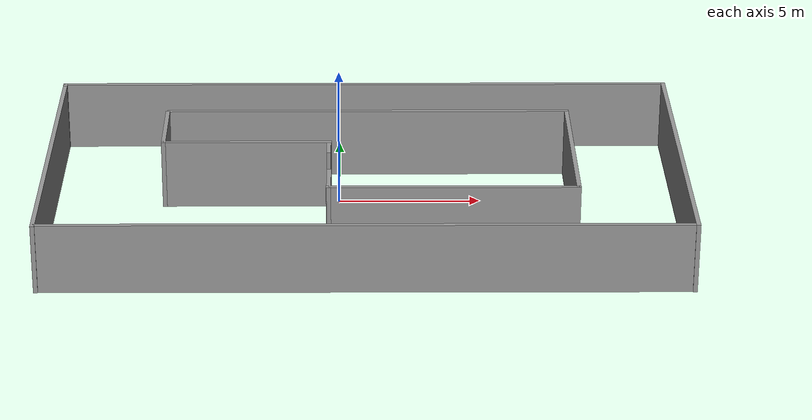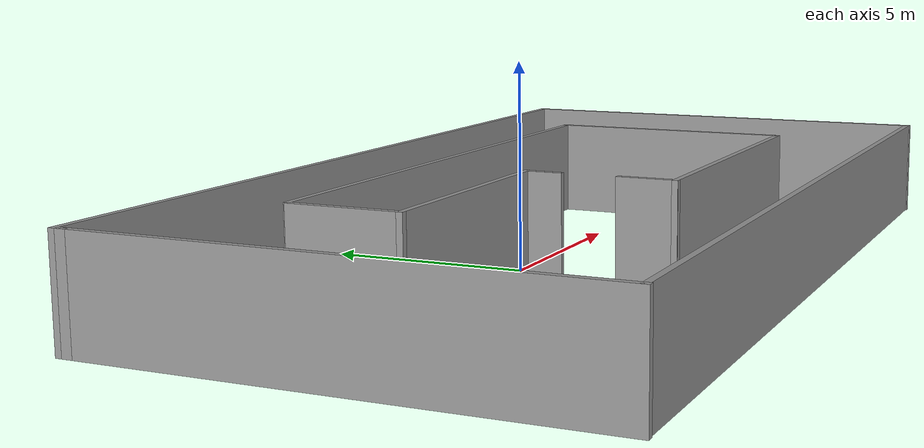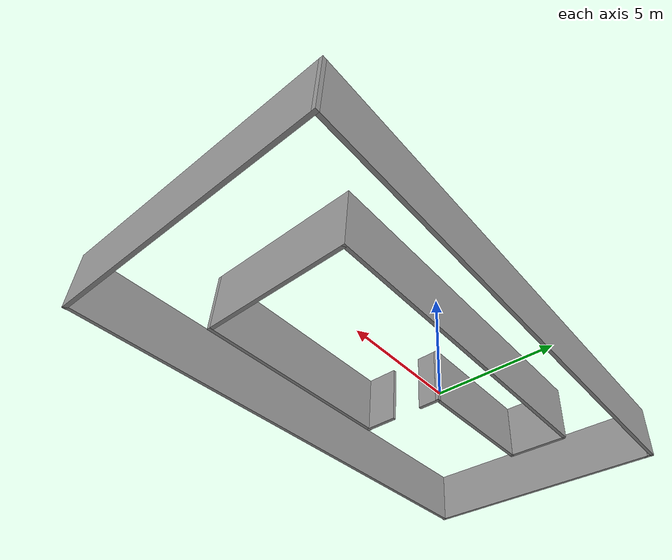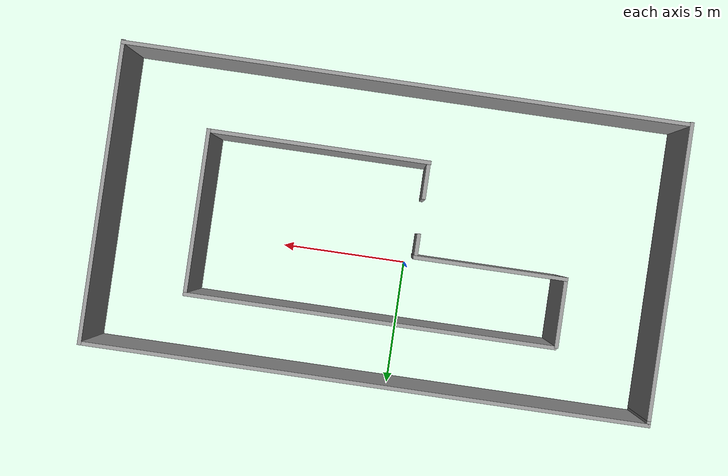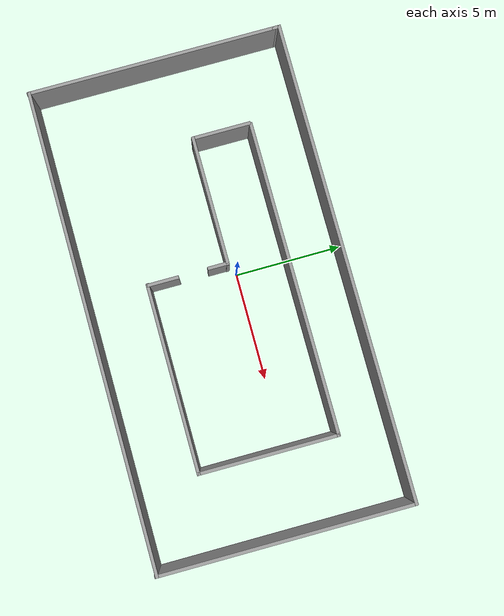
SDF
<?xml version='1.0'?>
<sdf version='1.6'>
  <model name='wallroom2'>
    <pose frame=''>0.910077 -1.07602 0 0 -0 0</pose>
    <link name='Wall_1'>
      <collision name='Wall_1_Collision'>
        <geometry>
          <box>
            <size>11.612 0.15 2.5</size>
          </box>
        </geometry>
        <pose frame=''>0 0 1.25 0 -0 0</pose>
      </collision>
      <visual name='Wall_1_Visual'>
        <pose frame=''>0 0 1.25 0 -0 0</pose>
        <geometry>
          <box>
            <size>11.612 0.15 2.5</size>
          </box>
        </geometry>
        <material>
          <script>
            <uri>file://media/materials/scripts/gazebo.material</uri>
            <name>Gazebo/Grey</name>
          </script>
          <ambient>1 1 1 1</ambient>
        </material>
      </visual>
      <pose frame=''>-11.05 -0.125 0 0 0 -1.5708</pose>
    </link>
    <link name='Wall_10'>
      <collision name='Wall_10_Collision'>
        <geometry>
          <box>
            <size>1.5 0.15 2.5</size>
          </box>
        </geometry>
        <pose frame=''>0 0 1.25 0 -0 0</pose>
      </collision>
      <visual name='Wall_10_Visual'>
        <pose frame=''>0 0 1.25 0 -0 0</pose>
        <geometry>
          <box>
            <size>1.5 0.15 2.5</size>
          </box>
        </geometry>
        <material>
          <script>
            <uri>file://media/materials/scripts/gazebo.material</uri>
            <name>Gazebo/Grey</name>
          </script>
          <ambient>1 1 1 1</ambient>
        </material>
      </visual>
      <pose frame=''>-1.24969 -2.26286 0 0 -0 1.5708</pose>
    </link>
    <link name='Wall_12'>
      <collision name='Wall_12_Collision'>
        <geometry>
          <box>
            <size>1 0.15 2.5</size>
          </box>
        </geometry>
        <pose frame=''>0 0 1.25 0 -0 0</pose>
      </collision>
      <visual name='Wall_12_Visual'>
        <pose frame=''>0 0 1.25 0 -0 0</pose>
        <geometry>
          <box>
            <size>1 0.15 2.5</size>
          </box>
        </geometry>
        <material>
          <script>
            <uri>file://media/materials/scripts/gazebo.material</uri>
            <name>Gazebo/Grey</name>
          </script>
          <ambient>1 1 1 1</ambient>
        </material>
      </visual>
      <pose frame=''>-1.27016 0.319259 0 0 -0 1.5708</pose>
    </link>
    <link name='Wall_13'>
      <collision name='Wall_13_Collision'>
        <geometry>
          <box>
            <size>6.01335 0.15 2.5</size>
          </box>
        </geometry>
        <pose frame=''>0 0 1.25 0 -0 0</pose>
      </collision>
      <visual name='Wall_13_Visual'>
        <pose frame=''>0 0 1.25 0 -0 0</pose>
        <geometry>
          <box>
            <size>6.01335 0.15 2.5</size>
          </box>
        </geometry>
        <material>
          <script>
            <uri>file://media/materials/scripts/gazebo.material</uri>
            <name>Gazebo/Grey</name>
          </script>
          <ambient>1 1 1 1</ambient>
        </material>
      </visual>
      <pose frame=''>-4.18434 0.744259 0 0 -0 3.14159</pose>
    </link>
    <link name='Wall_16'>
      <collision name='Wall_16_Collision'>
        <geometry>
          <box>
            <size>2.75 0.15 2.5</size>
          </box>
        </geometry>
        <pose frame=''>0 0 1.25 0 -0 0</pose>
      </collision>
      <visual name='Wall_16_Visual'>
        <pose frame=''>0 0 1.25 0 -0 0</pose>
        <geometry>
          <box>
            <size>2.75 0.15 2.5</size>
          </box>
        </geometry>
        <material>
          <script>
            <uri>file://media/materials/scripts/gazebo.material</uri>
            <name>Gazebo/Grey</name>
          </script>
          <ambient>1 1 1 1</ambient>
        </material>
      </visual>
      <pose frame=''>-7.11601 2.04426 0 0 -0 1.5708</pose>
    </link>
    <link name='Wall_2'>
      <collision name='Wall_2_Collision'>
        <geometry>
          <box>
            <size>22.25 0.15 2.5</size>
          </box>
        </geometry>
        <pose frame=''>0 0 1.25 0 -0 0</pose>
      </collision>
      <visual name='Wall_2_Visual'>
        <pose frame=''>0 0 1.25 0 -0 0</pose>
        <geometry>
          <box>
            <size>22.25 0.15 2.5</size>
          </box>
        </geometry>
        <material>
          <script>
            <uri>file://media/materials/scripts/gazebo.material</uri>
            <name>Gazebo/Grey</name>
          </script>
          <ambient>1 1 1 1</ambient>
        </material>
      </visual>
      <pose frame=''>0 -5.82941 0 0 -0 0</pose>
    </link>
    <link name='Wall_3'>
      <collision name='Wall_3_Collision'>
        <geometry>
          <box>
            <size>11.862 0.15 2.5</size>
          </box>
        </geometry>
        <pose frame=''>0 0 1.25 0 -0 0</pose>
      </collision>
      <visual name='Wall_3_Visual'>
        <pose frame=''>0 0 1.25 0 -0 0</pose>
        <geometry>
          <box>
            <size>11.862 0.15 2.5</size>
          </box>
        </geometry>
        <material>
          <script>
            <uri>file://media/materials/scripts/gazebo.material</uri>
            <name>Gazebo/Grey</name>
          </script>
          <ambient>1 1 1 1</ambient>
        </material>
      </visual>
      <pose frame=''>11.05 0 0 0 -0 1.5708</pose>
    </link>
    <link name='Wall_4'>
      <collision name='Wall_4_Collision'>
        <geometry>
          <box>
            <size>22.25 0.15 2.5</size>
          </box>
        </geometry>
        <pose frame=''>0 0 1.25 0 -0 0</pose>
      </collision>
      <visual name='Wall_4_Visual'>
        <pose frame=''>0 0 1.25 0 -0 0</pose>
        <geometry>
          <box>
            <size>22.25 0.15 2.5</size>
          </box>
        </geometry>
        <material>
          <script>
            <uri>file://media/materials/scripts/gazebo.material</uri>
            <name>Gazebo/Grey</name>
          </script>
          <ambient>1 1 1 1</ambient>
        </material>
      </visual>
      <pose frame=''>0 5.85601 0 0 -0 3.14159</pose>
    </link>
    <link name='Wall_5'>
      <collision name='Wall_5_Collision'>
        <geometry>
          <box>
            <size>0.4 0.15 2.5</size>
          </box>
        </geometry>
        <pose frame=''>0 0 1.25 0 -0 0</pose>
      </collision>
      <visual name='Wall_5_Visual'>
        <pose frame=''>0 0 1.25 0 -0 0</pose>
        <geometry>
          <box>
            <size>0.4 0.15 2.5</size>
          </box>
        </geometry>
        <material>
          <script>
            <uri>file://media/materials/scripts/gazebo.material</uri>
            <name>Gazebo/Grey</name>
          </script>
          <ambient>1 1 1 1</ambient>
        </material>
      </visual>
      <pose frame=''>-11.05 5.73101 0 0 0 -1.5708</pose>
    </link>
    <link name='Wall_7'>
      <collision name='Wall_7_Collision'>
        <geometry>
          <box>
            <size>14.5 0.15 2.5</size>
          </box>
        </geometry>
        <pose frame=''>0 0 1.25 0 -0 0</pose>
      </collision>
      <visual name='Wall_7_Visual'>
        <pose frame=''>0 0 1.25 0 -0 0</pose>
        <geometry>
          <box>
            <size>14.5 0.15 2.5</size>
          </box>
        </geometry>
        <material>
          <script>
            <uri>file://media/materials/scripts/gazebo.material</uri>
            <name>Gazebo/Grey</name>
          </script>
          <ambient>1 1 1 1</ambient>
        </material>
      </visual>
      <pose frame=''>0.126986 3.41214 0 0 -0 0</pose>
    </link>
    <link name='Wall_8'>
      <collision name='Wall_8_Collision'>
        <geometry>
          <box>
            <size>6.5 0.15 2.5</size>
          </box>
        </geometry>
        <pose frame=''>0 0 1.25 0 -0 0</pose>
      </collision>
      <visual name='Wall_8_Visual'>
        <pose frame=''>0 0 1.25 0 -0 0</pose>
        <geometry>
          <box>
            <size>6.5 0.15 2.5</size>
          </box>
        </geometry>
        <material>
          <script>
            <uri>file://media/materials/scripts/gazebo.material</uri>
            <name>Gazebo/Grey</name>
          </script>
          <ambient>1 1 1 1</ambient>
        </material>
      </visual>
      <pose frame=''>7.30199 0.237136 0 0 0 -1.5708</pose>
    </link>
    <link name='Wall_9'>
      <collision name='Wall_9_Collision'>
        <geometry>
          <box>
            <size>8.71917 0.15 2.5</size>
          </box>
        </geometry>
        <pose frame=''>0 0 1.25 0 -0 0</pose>
      </collision>
      <visual name='Wall_9_Visual'>
        <pose frame=''>0 0 1.25 0 -0 0</pose>
        <geometry>
          <box>
            <size>8.71917 0.15 2.5</size>
          </box>
        </geometry>
        <material>
          <script>
            <uri>file://media/materials/scripts/gazebo.material</uri>
            <name>Gazebo/Grey</name>
          </script>
          <ambient>1 1 1 1</ambient>
        </material>
      </visual>
      <pose frame=''>3.0174 -2.93786 0 0 -0 3.14159</pose>
    </link>
    <static>1</static>
  </model>
</sdf>
